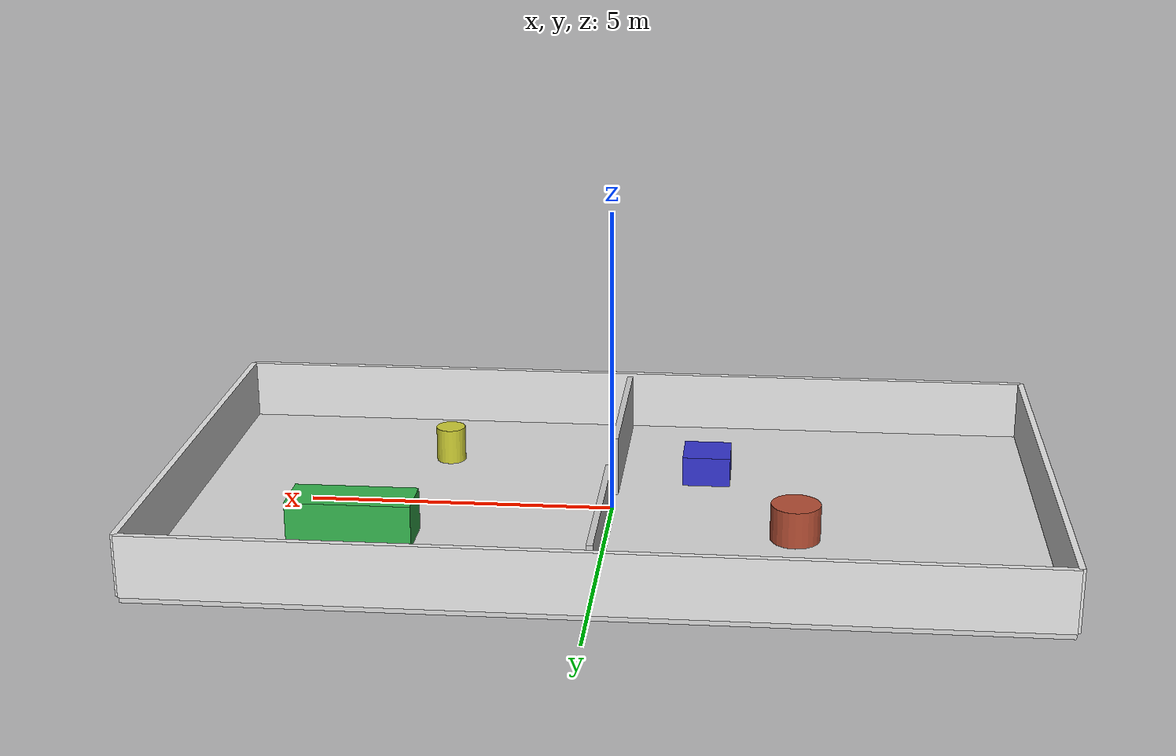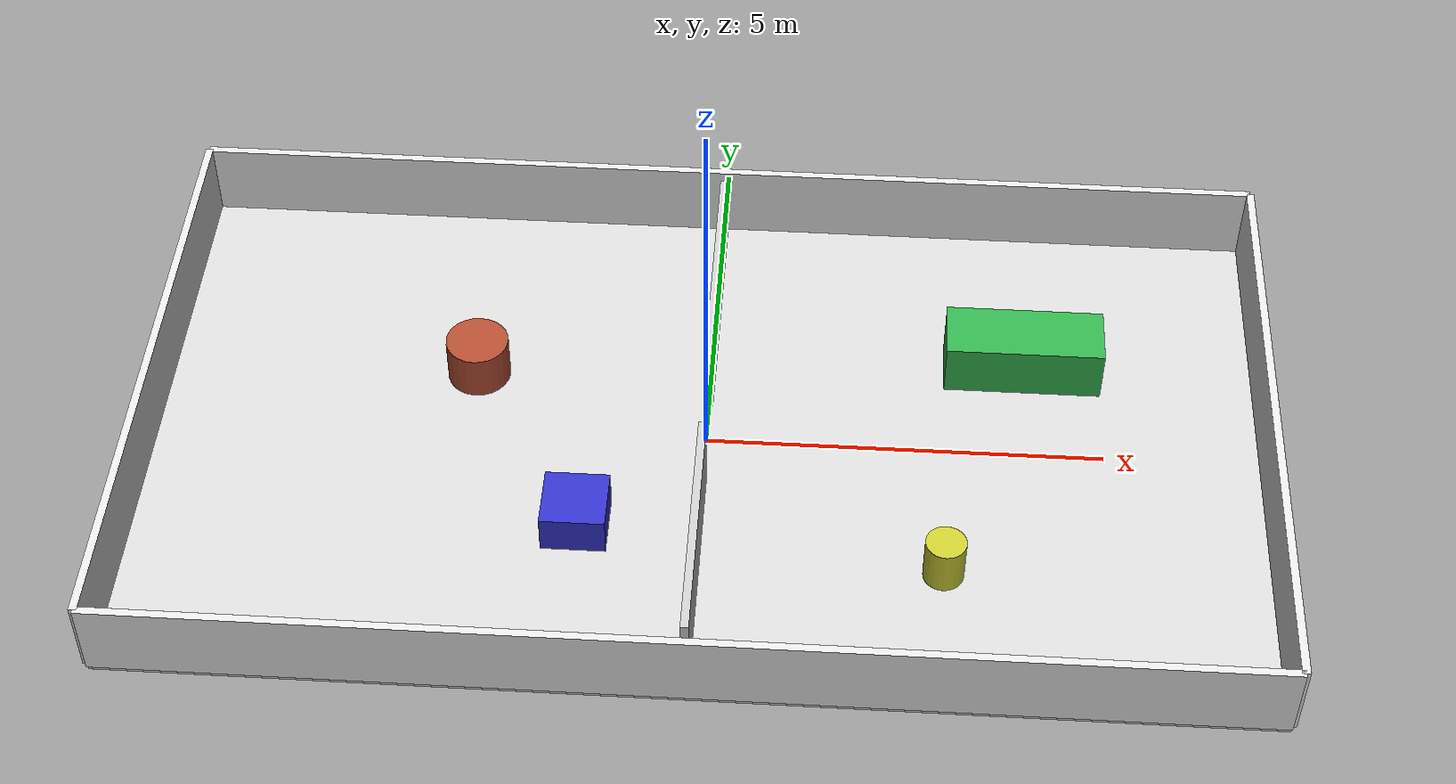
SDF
<?xml version="1.0" ?>
<sdf version="1.10">

<world name="two_rooms">

  <!-- PHYSICS + SYSTEMS     -->

  <plugin filename="gz-sim-physics-system"
          name="gz::sim::systems::Physics"/>

  <plugin filename="gz-sim-user-commands-system"
          name="gz::sim::systems::UserCommands"/>

  <plugin filename="gz-sim-scene-broadcaster-system"
          name="gz::sim::systems::SceneBroadcaster"/>

  <plugin filename="gz-sim-sensors-system"
          name="gz::sim::systems::Sensors">
    <render_engine>ogre2</render_engine>
  </plugin>

  <plugin filename="gz-sim-imu-system"
          name="gz::sim::systems::Imu">
  </plugin>

  <!-- LIGHTING (IMPORTANT)  -->

  <scene>
    <ambient>0.85 0.85 0.85 1</ambient>
    <background>0.75 0.75 0.75 1</background>
  </scene>

  <light name="sun" type="directional">
    <pose>0 0 10 0 0 0</pose>
    <direction>-0.5 0.2 -1</direction>

    <diffuse>1 1 1 1</diffuse>
    <specular>0.2 0.2 0.2 1</specular>
    <cast_shadows>true</cast_shadows>
  </light>

  <!-- GROUND PLANE          -->

  <!-- Ground plane with collision and visual -->
  <model name="ground_plane">
    <static>true</static>
    <link name="link">
      <collision name="collision">
        <geometry>
          <box>
            <size>14 8 1</size>
          </box>
        </geometry>
      </collision>
      <pose>0 0 -0.5 0 0 0</pose>
      <visual name="visual">
        <pose>0 0 0.45 0 0 0</pose>
        <geometry>
          <box>
            <size>14 8 0.1</size>
          </box>
        </geometry>
        <material>
          <ambient>0.85 0.85 0.85 1</ambient>
          <diffuse>0.85 0.85 0.85 1</diffuse>
        </material>
      </visual>
    </link>
  </model>

  <!-- OUTER WALLS           -->

  <model name="outer_walls">
    <static>true</static>

    <!-- South -->
    <link name="south">
      <pose>0 -4 0.5 0 0 0</pose>

      <collision name="c">
        <geometry><box><size>14 0.1 1</size></box></geometry>
      </collision>

      <visual name="v">
        <geometry><box><size>14 0.1 1</size></box></geometry>
        <material>
          <ambient>0.9 0.9 0.9 1</ambient>
          <diffuse>0.9 0.9 0.9 1</diffuse>
        </material>
      </visual>
    </link>

    <!-- North -->
    <link name="north">
      <pose>0 4 0.5 0 0 0</pose>

      <collision name="c">
        <geometry><box><size>14 0.1 1</size></box></geometry>
      </collision>

      <visual name="v">
        <geometry><box><size>14 0.1 1</size></box></geometry>
        <material>
          <ambient>0.9 0.9 0.9 1</ambient>
          <diffuse>0.9 0.9 0.9 1</diffuse>
        </material>
      </visual>
    </link>

    <!-- West -->
    <link name="west">
      <pose>-7 0 0.5 0 0 0</pose>

      <collision name="c">
        <geometry><box><size>0.1 8 1</size></box></geometry>
      </collision>

      <visual name="v">
        <geometry><box><size>0.1 8 1</size></box></geometry>
        <material>
          <ambient>0.9 0.9 0.9 1</ambient>
          <diffuse>0.9 0.9 0.9 1</diffuse>
        </material>
      </visual>
    </link>

    <!-- East -->
    <link name="east">
      <pose>7 0 0.5 0 0 0</pose>

      <collision name="c">
        <geometry><box><size>0.1 8 1</size></box></geometry>
      </collision>

      <visual name="v">
        <geometry><box><size>0.1 8 1</size></box></geometry>
        <material>
          <ambient>0.9 0.9 0.9 1</ambient>
          <diffuse>0.9 0.9 0.9 1</diffuse>
        </material>
      </visual>
    </link>

    <!-- Divider left (with doorway gap in center) -->
    <link name="divider_left">
      <pose>0 -2.2 0.5 0 0 0</pose>

      <collision name="c">
        <geometry><box><size>0.1 3.2 1</size></box></geometry>
      </collision>

      <visual name="v">
        <geometry><box><size>0.1 3.2 1</size></box></geometry>
        <material>
          <ambient>0.8 0.8 0.8 1</ambient>
          <diffuse>0.8 0.8 0.8 1</diffuse>
        </material>
      </visual>
    </link>

    <link name="divider_right">
      <pose>0 2.2 0.5 0 0 0</pose>

      <collision name="c">
        <geometry><box><size>0.1 3.2 1</size></box></geometry>
      </collision>

      <visual name="v">
        <geometry><box><size>0.1 3.2 1</size></box></geometry>
        <material>
          <ambient>0.8 0.8 0.8 1</ambient>
          <diffuse>0.8 0.8 0.8 1</diffuse>
        </material>
      </visual>
    </link>

  </model>

  <!-- OBSTACLES ROOM 1      -->

  <model name="table">
    <static>true</static>
    <pose>-3 1 0.3 0 0 0</pose>

    <link name="link">
      <collision name="collision"><geometry><cylinder><radius>0.4</radius><length>0.6</length></cylinder></geometry></collision>
      <visual name="visual">
        <geometry><cylinder><radius>0.4</radius><length>0.6</length></cylinder></geometry>
        <material>
          <ambient>0.7 0.3 0.2 1</ambient>
          <diffuse>0.7 0.3 0.2 1</diffuse>
        </material>
      </visual>
    </link>
  </model>

  <model name="box">
    <static>true</static>
    <pose>-1.5 -1.5 0.25 0 0 0</pose>

    <link name="link">
      <collision name="collision"><geometry><box><size>0.8 0.8 0.5</size></box></geometry></collision>
      <visual name="visual">
        <geometry><box><size>0.8 0.8 0.5</size></box></geometry>
        <material>
          <ambient>0.2 0.2 0.8 1</ambient>
          <diffuse>0.2 0.2 0.8 1</diffuse>
        </material>
      </visual>
    </link>
  </model>

  <!-- OBSTACLES ROOM 2      -->

  <model name="sofa">
    <static>true</static>
    <pose>4 1.5 0.35 0 0 0</pose>

    <link name="link">
      <collision name="collision"><geometry><box><size>2 0.8 0.7</size></box></geometry></collision>
      <visual name="visual">
        <geometry><box><size>2 0.8 0.7</size></box></geometry>
        <material>
          <ambient>0.2 0.7 0.3 1</ambient>
          <diffuse>0.2 0.7 0.3 1</diffuse>
        </material>
      </visual>
    </link>
  </model>

  <model name="chair">
    <static>true</static>
    <pose>3 -2 0.3 0 0 0</pose>

    <link name="link">
      <collision name="collision"><geometry><cylinder><radius>0.25</radius><length>0.6</length></cylinder></geometry></collision>
      <visual name="visual">
        <geometry><cylinder><radius>0.25</radius><length>0.6</length></cylinder></geometry>
        <material>
          <ambient>0.8 0.8 0.2 1</ambient>
          <diffuse>0.8 0.8 0.2 1</diffuse>
        </material>
      </visual>
    </link>
  </model>

</world>

</sdf>
